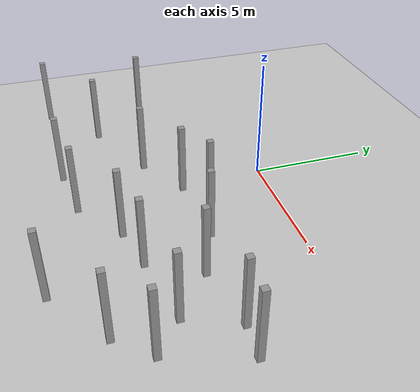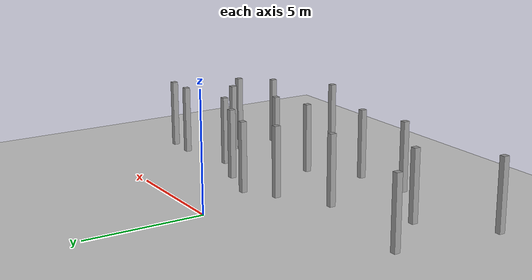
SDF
<sdf version="1.6">
 <world name="default">
  <model name="ground_plane">
   <static>1</static>
   <link name="link">
    <collision name="collision">
     <geometry><plane><normal>0 0 1</normal><size>100 100</size></plane></geometry>
     <surface><friction><ode><mu>100</mu><mu2>50</mu2></ode></friction></surface>
    </collision>
    <visual name="visual">
     <cast_shadows>0</cast_shadows>
     <geometry><plane><normal>0 0 1</normal><size>100 100</size></plane></geometry>
     <material>
      <script><uri>file://media/materials/scripts/gazebo.material</uri><name>Gazebo/Grey</name></script>
     </material>
    </visual>
   </link>
  </model>
  <model name="box_2_0">
   <link name="link">
    <pose>0 0 1 0 -0 0</pose>
    <inertial>
     <mass>1</mass>
     <inertia><ixx>5.16667</ixx><ixy>0</ixy><ixz>0</ixz><iyy>5.16667</iyy><iyz>0</iyz><izz>5.16667</izz></inertia>
     <pose>0 0 1 0 -0 0</pose>
    </inertial>
    <visual name="ModelPreview_4::link::visual_1">
     <geometry><box><size>0.25 0.25 3</size></box></geometry>
     <material>
      <script><name>Gazebo/Grey</name><uri>file://media/materials/scripts/gazebo.material</uri></script>
      <ambient>0.3 0.3 0.3 1</ambient>
      <diffuse>0.7 0.7 0.7 1</diffuse>
      <specular>0.01 0.01 0.01 1</specular>
      <emissive>0 0 0 1</emissive>
      <shader type="vertex"><normal_map>__default__</normal_map></shader>
     </material>
    </visual>
    <visual name="visual">
     <geometry><box><size>0.25 0.25 3</size></box></geometry>
     <material>
      <script><name>Gazebo/Grey</name><uri>file://media/materials/scripts/gazebo.material</uri></script>
      <ambient>0.3 0.3 0.3 1</ambient>
      <diffuse>0.7 0.7 0.7 1</diffuse>
      <specular>0.01 0.01 0.01 1</specular>
      <emissive>0 0 0 1</emissive>
      <shader type="vertex"><normal_map>__default__</normal_map></shader>
     </material>
    </visual>
    <collision name="collision">
     <geometry><box><size>0.25 0.25 3</size></box></geometry>
     <surface>
      <friction>
       <ode><mu>1</mu><mu2>1</mu2><fdir1>0 0 0</fdir1><slip1>0</slip1><slip2>0</slip2></ode>
       <torsional>
        <coefficient>1</coefficient>
        <patch_radius>0</patch_radius>
        <surface_radius>0</surface_radius>
        <use_patch_radius>1</use_patch_radius>
        <ode><slip>0</slip></ode>
       </torsional>
      </friction>
      <bounce><restitution_coefficient>0</restitution_coefficient><threshold>1e+06</threshold></bounce>
      <contact>
       <collide_without_contact>0</collide_without_contact>
       <collide_without_contact_bitmask>1</collide_without_contact_bitmask>
       <collide_bitmask>1</collide_bitmask>
       <ode>
        <soft_cfm>0</soft_cfm>
        <soft_erp>0.2</soft_erp>
        <kp>1e+13</kp>
        <kd>1</kd>
        <max_vel>0.01</max_vel>
        <min_depth>0</min_depth>
       </ode>
       <bullet>
        <split_impulse>1</split_impulse>
        <split_impulse_penetration_threshold>-0.01</split_impulse_penetration_threshold>
        <soft_cfm>0</soft_cfm>
        <soft_erp>0.2</soft_erp>
        <kp>1e+13</kp>
        <kd>1</kd>
       </bullet>
      </contact>
     </surface>
    </collision>
   </link>
   <static>0</static>
   <pose>-1.80227 -4.75192 0.5 -3e-06 -1e-06 -0.000128</pose>
  </model>
  <model name="box_2_1">
   <link name="link">
    <pose>0 0 1 0 -0 0</pose>
    <inertial>
     <mass>1</mass>
     <inertia><ixx>5.16667</ixx><ixy>0</ixy><ixz>0</ixz><iyy>5.16667</iyy><iyz>0</iyz><izz>5.16667</izz></inertia>
     <pose>0 0 1 0 -0 0</pose>
    </inertial>
    <visual name="ModelPreview_4::link::visual_1">
     <geometry><box><size>0.25 0.25 3</size></box></geometry>
     <material>
      <script><name>Gazebo/Grey</name><uri>file://media/materials/scripts/gazebo.material</uri></script>
      <ambient>0.3 0.3 0.3 1</ambient>
      <diffuse>0.7 0.7 0.7 1</diffuse>
      <specular>0.01 0.01 0.01 1</specular>
      <emissive>0 0 0 1</emissive>
      <shader type="vertex"><normal_map>__default__</normal_map></shader>
     </material>
    </visual>
    <visual name="visual">
     <geometry><box><size>0.25 0.25 3</size></box></geometry>
     <material>
      <script><name>Gazebo/Grey</name><uri>file://media/materials/scripts/gazebo.material</uri></script>
      <ambient>0.3 0.3 0.3 1</ambient>
      <diffuse>0.7 0.7 0.7 1</diffuse>
      <specular>0.01 0.01 0.01 1</specular>
      <emissive>0 0 0 1</emissive>
      <shader type="vertex"><normal_map>__default__</normal_map></shader>
     </material>
    </visual>
    <collision name="collision">
     <geometry><box><size>0.25 0.25 3</size></box></geometry>
     <surface>
      <friction>
       <ode><mu>1</mu><mu2>1</mu2><fdir1>0 0 0</fdir1><slip1>0</slip1><slip2>0</slip2></ode>
       <torsional>
        <coefficient>1</coefficient>
        <patch_radius>0</patch_radius>
        <surface_radius>0</surface_radius>
        <use_patch_radius>1</use_patch_radius>
        <ode><slip>0</slip></ode>
       </torsional>
      </friction>
      <bounce><restitution_coefficient>0</restitution_coefficient><threshold>1e+06</threshold></bounce>
      <contact>
       <collide_without_contact>0</collide_without_contact>
       <collide_without_contact_bitmask>1</collide_without_contact_bitmask>
       <collide_bitmask>1</collide_bitmask>
       <ode>
        <soft_cfm>0</soft_cfm>
        <soft_erp>0.2</soft_erp>
        <kp>1e+13</kp>
        <kd>1</kd>
        <max_vel>0.01</max_vel>
        <min_depth>0</min_depth>
       </ode>
       <bullet>
        <split_impulse>1</split_impulse>
        <split_impulse_penetration_threshold>-0.01</split_impulse_penetration_threshold>
        <soft_cfm>0</soft_cfm>
        <soft_erp>0.2</soft_erp>
        <kp>1e+13</kp>
        <kd>1</kd>
       </bullet>
      </contact>
     </surface>
    </collision>
   </link>
   <static>0</static>
   <pose>4.35883 -6.08967 0.500001 0 5e-06 -0.000185</pose>
  </model>
  <model name="box_2_2">
   <link name="link">
    <pose>0 0 1 0 -0 0</pose>
    <inertial>
     <mass>1</mass>
     <inertia><ixx>5.16667</ixx><ixy>0</ixy><ixz>0</ixz><iyy>5.16667</iyy><iyz>0</iyz><izz>5.16667</izz></inertia>
     <pose>0 0 1 0 -0 0</pose>
    </inertial>
    <visual name="ModelPreview_4::link::visual_1">
     <geometry><box><size>0.25 0.25 3</size></box></geometry>
     <material>
      <script><name>Gazebo/Grey</name><uri>file://media/materials/scripts/gazebo.material</uri></script>
      <ambient>0.3 0.3 0.3 1</ambient>
      <diffuse>0.7 0.7 0.7 1</diffuse>
      <specular>0.01 0.01 0.01 1</specular>
      <emissive>0 0 0 1</emissive>
      <shader type="vertex"><normal_map>__default__</normal_map></shader>
     </material>
    </visual>
    <visual name="visual">
     <geometry><box><size>0.25 0.25 3</size></box></geometry>
     <material>
      <script><name>Gazebo/Grey</name><uri>file://media/materials/scripts/gazebo.material</uri></script>
      <ambient>0.3 0.3 0.3 1</ambient>
      <diffuse>0.7 0.7 0.7 1</diffuse>
      <specular>0.01 0.01 0.01 1</specular>
      <emissive>0 0 0 1</emissive>
      <shader type="vertex"><normal_map>__default__</normal_map></shader>
     </material>
    </visual>
    <collision name="collision">
     <geometry><box><size>0.25 0.25 3</size></box></geometry>
     <surface>
      <friction>
       <ode><mu>1</mu><mu2>1</mu2><fdir1>0 0 0</fdir1><slip1>0</slip1><slip2>0</slip2></ode>
       <torsional>
        <coefficient>1</coefficient>
        <patch_radius>0</patch_radius>
        <surface_radius>0</surface_radius>
        <use_patch_radius>1</use_patch_radius>
        <ode><slip>0</slip></ode>
       </torsional>
      </friction>
      <bounce><restitution_coefficient>0</restitution_coefficient><threshold>1e+06</threshold></bounce>
      <contact>
       <collide_without_contact>0</collide_without_contact>
       <collide_without_contact_bitmask>1</collide_without_contact_bitmask>
       <collide_bitmask>1</collide_bitmask>
       <ode>
        <soft_cfm>0</soft_cfm>
        <soft_erp>0.2</soft_erp>
        <kp>1e+13</kp>
        <kd>1</kd>
        <max_vel>0.01</max_vel>
        <min_depth>0</min_depth>
       </ode>
       <bullet>
        <split_impulse>1</split_impulse>
        <split_impulse_penetration_threshold>-0.01</split_impulse_penetration_threshold>
        <soft_cfm>0</soft_cfm>
        <soft_erp>0.2</soft_erp>
        <kp>1e+13</kp>
        <kd>1</kd>
       </bullet>
      </contact>
     </surface>
    </collision>
   </link>
   <static>0</static>
   <pose>7.18492 -5.54152 0.5 0 1e-06 -0.000157</pose>
  </model>
  <model name="box_2_3">
   <link name="link">
    <pose>0 0 1 0 -0 0</pose>
    <inertial>
     <mass>1</mass>
     <inertia><ixx>5.16667</ixx><ixy>0</ixy><ixz>0</ixz><iyy>5.16667</iyy><iyz>0</iyz><izz>5.16667</izz></inertia>
     <pose>0 0 1 0 -0 0</pose>
    </inertial>
    <visual name="ModelPreview_4::link::visual_1">
     <geometry><box><size>0.25 0.25 3</size></box></geometry>
     <material>
      <script><name>Gazebo/Grey</name><uri>file://media/materials/scripts/gazebo.material</uri></script>
      <ambient>0.3 0.3 0.3 1</ambient>
      <diffuse>0.7 0.7 0.7 1</diffuse>
      <specular>0.01 0.01 0.01 1</specular>
      <emissive>0 0 0 1</emissive>
      <shader type="vertex"><normal_map>__default__</normal_map></shader>
     </material>
    </visual>
    <visual name="visual">
     <geometry><box><size>0.25 0.25 3</size></box></geometry>
     <material>
      <script><name>Gazebo/Grey</name><uri>file://media/materials/scripts/gazebo.material</uri></script>
      <ambient>0.3 0.3 0.3 1</ambient>
      <diffuse>0.7 0.7 0.7 1</diffuse>
      <specular>0.01 0.01 0.01 1</specular>
      <emissive>0 0 0 1</emissive>
      <shader type="vertex"><normal_map>__default__</normal_map></shader>
     </material>
    </visual>
    <collision name="collision">
     <geometry><box><size>0.25 0.25 3</size></box></geometry>
     <surface>
      <friction>
       <ode><mu>1</mu><mu2>1</mu2><fdir1>0 0 0</fdir1><slip1>0</slip1><slip2>0</slip2></ode>
       <torsional>
        <coefficient>1</coefficient>
        <patch_radius>0</patch_radius>
        <surface_radius>0</surface_radius>
        <use_patch_radius>1</use_patch_radius>
        <ode><slip>0</slip></ode>
       </torsional>
      </friction>
      <bounce><restitution_coefficient>0</restitution_coefficient><threshold>1e+06</threshold></bounce>
      <contact>
       <collide_without_contact>0</collide_without_contact>
       <collide_without_contact_bitmask>1</collide_without_contact_bitmask>
       <collide_bitmask>1</collide_bitmask>
       <ode>
        <soft_cfm>0</soft_cfm>
        <soft_erp>0.2</soft_erp>
        <kp>1e+13</kp>
        <kd>1</kd>
        <max_vel>0.01</max_vel>
        <min_depth>0</min_depth>
       </ode>
       <bullet>
        <split_impulse>1</split_impulse>
        <split_impulse_penetration_threshold>-0.01</split_impulse_penetration_threshold>
        <soft_cfm>0</soft_cfm>
        <soft_erp>0.2</soft_erp>
        <kp>1e+13</kp>
        <kd>1</kd>
       </bullet>
      </contact>
     </surface>
    </collision>
   </link>
   <static>0</static>
   <pose>0.476728 -7.9552 0.500001 3e-06 -4e-06 -0.000167</pose>
  </model>
  <model name="box_2_4">
   <link name="link">
    <pose>0 0 1 0 -0 0</pose>
    <inertial>
     <mass>1</mass>
     <inertia><ixx>5.16667</ixx><ixy>0</ixy><ixz>0</ixz><iyy>5.16667</iyy><iyz>0</iyz><izz>5.16667</izz></inertia>
     <pose>0 0 1 0 -0 0</pose>
    </inertial>
    <visual name="ModelPreview_4::link::visual_1">
     <geometry><box><size>0.25 0.25 3</size></box></geometry>
     <material>
      <script><name>Gazebo/Grey</name><uri>file://media/materials/scripts/gazebo.material</uri></script>
      <ambient>0.3 0.3 0.3 1</ambient>
      <diffuse>0.7 0.7 0.7 1</diffuse>
      <specular>0.01 0.01 0.01 1</specular>
      <emissive>0 0 0 1</emissive>
      <shader type="vertex"><normal_map>__default__</normal_map></shader>
     </material>
    </visual>
    <visual name="visual">
     <geometry><box><size>0.25 0.25 3</size></box></geometry>
     <material>
      <script><name>Gazebo/Grey</name><uri>file://media/materials/scripts/gazebo.material</uri></script>
      <ambient>0.3 0.3 0.3 1</ambient>
      <diffuse>0.7 0.7 0.7 1</diffuse>
      <specular>0.01 0.01 0.01 1</specular>
      <emissive>0 0 0 1</emissive>
      <shader type="vertex"><normal_map>__default__</normal_map></shader>
     </material>
    </visual>
    <collision name="collision">
     <geometry><box><size>0.25 0.25 3</size></box></geometry>
     <surface>
      <friction>
       <ode><mu>1</mu><mu2>1</mu2><fdir1>0 0 0</fdir1><slip1>0</slip1><slip2>0</slip2></ode>
       <torsional>
        <coefficient>1</coefficient>
        <patch_radius>0</patch_radius>
        <surface_radius>0</surface_radius>
        <use_patch_radius>1</use_patch_radius>
        <ode><slip>0</slip></ode>
       </torsional>
      </friction>
      <bounce><restitution_coefficient>0</restitution_coefficient><threshold>1e+06</threshold></bounce>
      <contact>
       <collide_without_contact>0</collide_without_contact>
       <collide_without_contact_bitmask>1</collide_without_contact_bitmask>
       <collide_bitmask>1</collide_bitmask>
       <ode>
        <soft_cfm>0</soft_cfm>
        <soft_erp>0.2</soft_erp>
        <kp>1e+13</kp>
        <kd>1</kd>
        <max_vel>0.01</max_vel>
        <min_depth>0</min_depth>
       </ode>
       <bullet>
        <split_impulse>1</split_impulse>
        <split_impulse_penetration_threshold>-0.01</split_impulse_penetration_threshold>
        <soft_cfm>0</soft_cfm>
        <soft_erp>0.2</soft_erp>
        <kp>1e+13</kp>
        <kd>1</kd>
       </bullet>
      </contact>
     </surface>
    </collision>
   </link>
   <static>0</static>
   <pose>7.33014 -7.82542 0.5 3e-06 -0 -0.000129</pose>
  </model>
  <model name="box_2_6">
   <link name="link">
    <pose>0 0 1 0 -0 0</pose>
    <inertial>
     <mass>1</mass>
     <inertia><ixx>5.16667</ixx><ixy>0</ixy><ixz>0</ixz><iyy>5.16667</iyy><iyz>0</iyz><izz>5.16667</izz></inertia>
     <pose>0 0 1 0 -0 0</pose>
    </inertial>
    <visual name="ModelPreview_4::link::visual_1">
     <geometry><box><size>0.25 0.25 3</size></box></geometry>
     <material>
      <script><name>Gazebo/Grey</name><uri>file://media/materials/scripts/gazebo.material</uri></script>
      <ambient>0.3 0.3 0.3 1</ambient>
      <diffuse>0.7 0.7 0.7 1</diffuse>
      <specular>0.01 0.01 0.01 1</specular>
      <emissive>0 0 0 1</emissive>
      <shader type="vertex"><normal_map>__default__</normal_map></shader>
     </material>
    </visual>
    <visual name="visual">
     <geometry><box><size>0.25 0.25 3</size></box></geometry>
     <material>
      <script><name>Gazebo/Grey</name><uri>file://media/materials/scripts/gazebo.material</uri></script>
      <ambient>0.3 0.3 0.3 1</ambient>
      <diffuse>0.7 0.7 0.7 1</diffuse>
      <specular>0.01 0.01 0.01 1</specular>
      <emissive>0 0 0 1</emissive>
      <shader type="vertex"><normal_map>__default__</normal_map></shader>
     </material>
    </visual>
    <collision name="collision">
     <geometry><box><size>0.25 0.25 3</size></box></geometry>
     <surface>
      <friction>
       <ode><mu>1</mu><mu2>1</mu2><fdir1>0 0 0</fdir1><slip1>0</slip1><slip2>0</slip2></ode>
       <torsional>
        <coefficient>1</coefficient>
        <patch_radius>0</patch_radius>
        <surface_radius>0</surface_radius>
        <use_patch_radius>1</use_patch_radius>
        <ode><slip>0</slip></ode>
       </torsional>
      </friction>
      <bounce><restitution_coefficient>0</restitution_coefficient><threshold>1e+06</threshold></bounce>
      <contact>
       <collide_without_contact>0</collide_without_contact>
       <collide_without_contact_bitmask>1</collide_without_contact_bitmask>
       <collide_bitmask>1</collide_bitmask>
       <ode>
        <soft_cfm>0</soft_cfm>
        <soft_erp>0.2</soft_erp>
        <kp>1e+13</kp>
        <kd>1</kd>
        <max_vel>0.01</max_vel>
        <min_depth>0</min_depth>
       </ode>
       <bullet>
        <split_impulse>1</split_impulse>
        <split_impulse_penetration_threshold>-0.01</split_impulse_penetration_threshold>
        <soft_cfm>0</soft_cfm>
        <soft_erp>0.2</soft_erp>
        <kp>1e+13</kp>
        <kd>1</kd>
       </bullet>
      </contact>
     </surface>
    </collision>
   </link>
   <static>0</static>
   <pose>3.49181 -3.31679 0.5 1e-06 -3e-06 -9.3e-05</pose>
  </model>
  <model name="box_2_8">
   <link name="link">
    <pose>0 0 1 0 -0 0</pose>
    <inertial>
     <mass>1</mass>
     <inertia><ixx>5.16667</ixx><ixy>0</ixy><ixz>0</ixz><iyy>5.16667</iyy><iyz>0</iyz><izz>5.16667</izz></inertia>
     <pose>0 0 1 0 -0 0</pose>
    </inertial>
    <visual name="ModelPreview_4::link::visual_1">
     <geometry><box><size>0.25 0.25 3</size></box></geometry>
     <material>
      <script><name>Gazebo/Grey</name><uri>file://media/materials/scripts/gazebo.material</uri></script>
      <ambient>0.3 0.3 0.3 1</ambient>
      <diffuse>0.7 0.7 0.7 1</diffuse>
      <specular>0.01 0.01 0.01 1</specular>
      <emissive>0 0 0 1</emissive>
      <shader type="vertex"><normal_map>__default__</normal_map></shader>
     </material>
    </visual>
    <visual name="visual">
     <geometry><box><size>0.25 0.25 3</size></box></geometry>
     <material>
      <script><name>Gazebo/Grey</name><uri>file://media/materials/scripts/gazebo.material</uri></script>
      <ambient>0.3 0.3 0.3 1</ambient>
      <diffuse>0.7 0.7 0.7 1</diffuse>
      <specular>0.01 0.01 0.01 1</specular>
      <emissive>0 0 0 1</emissive>
      <shader type="vertex"><normal_map>__default__</normal_map></shader>
     </material>
    </visual>
    <collision name="collision">
     <geometry><box><size>0.25 0.25 3</size></box></geometry>
     <surface>
      <friction>
       <ode><mu>1</mu><mu2>1</mu2><fdir1>0 0 0</fdir1><slip1>0</slip1><slip2>0</slip2></ode>
       <torsional>
        <coefficient>1</coefficient>
        <patch_radius>0</patch_radius>
        <surface_radius>0</surface_radius>
        <use_patch_radius>1</use_patch_radius>
        <ode><slip>0</slip></ode>
       </torsional>
      </friction>
      <bounce><restitution_coefficient>0</restitution_coefficient><threshold>1e+06</threshold></bounce>
      <contact>
       <collide_without_contact>0</collide_without_contact>
       <collide_without_contact_bitmask>1</collide_without_contact_bitmask>
       <collide_bitmask>1</collide_bitmask>
       <ode>
        <soft_cfm>0</soft_cfm>
        <soft_erp>0.2</soft_erp>
        <kp>1e+13</kp>
        <kd>1</kd>
        <max_vel>0.01</max_vel>
        <min_depth>0</min_depth>
       </ode>
       <bullet>
        <split_impulse>1</split_impulse>
        <split_impulse_penetration_threshold>-0.01</split_impulse_penetration_threshold>
        <soft_cfm>0</soft_cfm>
        <soft_erp>0.2</soft_erp>
        <kp>1e+13</kp>
        <kd>1</kd>
       </bullet>
      </contact>
     </surface>
    </collision>
   </link>
   <static>0</static>
   <pose>2.49951 -6.51199 0.5 0 0 -0.000133</pose>
  </model>
  <model name="box_2_9">
   <link name="link">
    <pose>0 0 1 0 -0 0</pose>
    <inertial>
     <mass>1</mass>
     <inertia><ixx>5.16667</ixx><ixy>0</ixy><ixz>0</ixz><iyy>5.16667</iyy><iyz>0</iyz><izz>5.16667</izz></inertia>
     <pose>0 0 1 0 -0 0</pose>
    </inertial>
    <visual name="ModelPreview_4::link::visual_1">
     <geometry><box><size>0.25 0.25 3</size></box></geometry>
     <material>
      <script><name>Gazebo/Grey</name><uri>file://media/materials/scripts/gazebo.material</uri></script>
      <ambient>0.3 0.3 0.3 1</ambient>
      <diffuse>0.7 0.7 0.7 1</diffuse>
      <specular>0.01 0.01 0.01 1</specular>
      <emissive>0 0 0 1</emissive>
      <shader type="vertex"><normal_map>__default__</normal_map></shader>
     </material>
    </visual>
    <visual name="visual">
     <geometry><box><size>0.25 0.25 3</size></box></geometry>
     <material>
      <script><name>Gazebo/Grey</name><uri>file://media/materials/scripts/gazebo.material</uri></script>
      <ambient>0.3 0.3 0.3 1</ambient>
      <diffuse>0.7 0.7 0.7 1</diffuse>
      <specular>0.01 0.01 0.01 1</specular>
      <emissive>0 0 0 1</emissive>
      <shader type="vertex"><normal_map>__default__</normal_map></shader>
     </material>
    </visual>
    <collision name="collision">
     <geometry><box><size>0.25 0.25 3</size></box></geometry>
     <surface>
      <friction>
       <ode><mu>1</mu><mu2>1</mu2><fdir1>0 0 0</fdir1><slip1>0</slip1><slip2>0</slip2></ode>
       <torsional>
        <coefficient>1</coefficient>
        <patch_radius>0</patch_radius>
        <surface_radius>0</surface_radius>
        <use_patch_radius>1</use_patch_radius>
        <ode><slip>0</slip></ode>
       </torsional>
      </friction>
      <bounce><restitution_coefficient>0</restitution_coefficient><threshold>1e+06</threshold></bounce>
      <contact>
       <collide_without_contact>0</collide_without_contact>
       <collide_without_contact_bitmask>1</collide_without_contact_bitmask>
       <collide_bitmask>1</collide_bitmask>
       <ode>
        <soft_cfm>0</soft_cfm>
        <soft_erp>0.2</soft_erp>
        <kp>1e+13</kp>
        <kd>1</kd>
        <max_vel>0.01</max_vel>
        <min_depth>0</min_depth>
       </ode>
       <bullet>
        <split_impulse>1</split_impulse>
        <split_impulse_penetration_threshold>-0.01</split_impulse_penetration_threshold>
        <soft_cfm>0</soft_cfm>
        <soft_erp>0.2</soft_erp>
        <kp>1e+13</kp>
        <kd>1</kd>
       </bullet>
      </contact>
     </surface>
    </collision>
   </link>
   <static>0</static>
   <pose>-1.93996 -8.27565 0.5 -0 1e-06 -0.000136</pose>
  </model>
  <model name="box_2_10">
   <link name="link">
    <pose>0 0 1 0 -0 0</pose>
    <inertial>
     <mass>1</mass>
     <inertia><ixx>5.16667</ixx><ixy>0</ixy><ixz>0</ixz><iyy>5.16667</iyy><iyz>0</iyz><izz>5.16667</izz></inertia>
     <pose>0 0 1 0 -0 0</pose>
    </inertial>
    <visual name="ModelPreview_4::link::visual_1">
     <geometry><box><size>0.25 0.25 3</size></box></geometry>
     <material>
      <script><name>Gazebo/Grey</name><uri>file://media/materials/scripts/gazebo.material</uri></script>
      <ambient>0.3 0.3 0.3 1</ambient>
      <diffuse>0.7 0.7 0.7 1</diffuse>
      <specular>0.01 0.01 0.01 1</specular>
      <emissive>0 0 0 1</emissive>
      <shader type="vertex"><normal_map>__default__</normal_map></shader>
     </material>
    </visual>
    <visual name="visual">
     <geometry><box><size>0.25 0.25 3</size></box></geometry>
     <material>
      <script><name>Gazebo/Grey</name><uri>file://media/materials/scripts/gazebo.material</uri></script>
      <ambient>0.3 0.3 0.3 1</ambient>
      <diffuse>0.7 0.7 0.7 1</diffuse>
      <specular>0.01 0.01 0.01 1</specular>
      <emissive>0 0 0 1</emissive>
      <shader type="vertex"><normal_map>__default__</normal_map></shader>
     </material>
    </visual>
    <collision name="collision">
     <geometry><box><size>0.25 0.25 3</size></box></geometry>
     <surface>
      <friction>
       <ode><mu>1</mu><mu2>1</mu2><fdir1>0 0 0</fdir1><slip1>0</slip1><slip2>0</slip2></ode>
       <torsional>
        <coefficient>1</coefficient>
        <patch_radius>0</patch_radius>
        <surface_radius>0</surface_radius>
        <use_patch_radius>1</use_patch_radius>
        <ode><slip>0</slip></ode>
       </torsional>
      </friction>
      <bounce><restitution_coefficient>0</restitution_coefficient><threshold>1e+06</threshold></bounce>
      <contact>
       <collide_without_contact>0</collide_without_contact>
       <collide_without_contact_bitmask>1</collide_without_contact_bitmask>
       <collide_bitmask>1</collide_bitmask>
       <ode>
        <soft_cfm>0</soft_cfm>
        <soft_erp>0.2</soft_erp>
        <kp>1e+13</kp>
        <kd>1</kd>
        <max_vel>0.01</max_vel>
        <min_depth>0</min_depth>
       </ode>
       <bullet>
        <split_impulse>1</split_impulse>
        <split_impulse_penetration_threshold>-0.01</split_impulse_penetration_threshold>
        <soft_cfm>0</soft_cfm>
        <soft_erp>0.2</soft_erp>
        <kp>1e+13</kp>
        <kd>1</kd>
       </bullet>
      </contact>
     </surface>
    </collision>
   </link>
   <static>0</static>
   <pose>4.96375 -9.57303 0.500001 5e-06 -0 -0.000122</pose>
  </model>
  <model name="box_2_11">
   <link name="link">
    <pose>0 0 1 0 -0 0</pose>
    <inertial>
     <mass>1</mass>
     <inertia><ixx>5.16667</ixx><ixy>0</ixy><ixz>0</ixz><iyy>5.16667</iyy><iyz>0</iyz><izz>5.16667</izz></inertia>
     <pose>0 0 1 0 -0 0</pose>
    </inertial>
    <visual name="ModelPreview_4::link::visual_1">
     <geometry><box><size>0.25 0.25 3</size></box></geometry>
     <material>
      <script><name>Gazebo/Grey</name><uri>file://media/materials/scripts/gazebo.material</uri></script>
      <ambient>0.3 0.3 0.3 1</ambient>
      <diffuse>0.7 0.7 0.7 1</diffuse>
      <specular>0.01 0.01 0.01 1</specular>
      <emissive>0 0 0 1</emissive>
      <shader type="vertex"><normal_map>__default__</normal_map></shader>
     </material>
    </visual>
    <visual name="visual">
     <geometry><box><size>0.25 0.25 3</size></box></geometry>
     <material>
      <script><name>Gazebo/Grey</name><uri>file://media/materials/scripts/gazebo.material</uri></script>
      <ambient>0.3 0.3 0.3 1</ambient>
      <diffuse>0.7 0.7 0.7 1</diffuse>
      <specular>0.01 0.01 0.01 1</specular>
      <emissive>0 0 0 1</emissive>
      <shader type="vertex"><normal_map>__default__</normal_map></shader>
     </material>
    </visual>
    <collision name="collision">
     <geometry><box><size>0.25 0.25 3</size></box></geometry>
     <surface>
      <friction>
       <ode><mu>1</mu><mu2>1</mu2><fdir1>0 0 0</fdir1><slip1>0</slip1><slip2>0</slip2></ode>
       <torsional>
        <coefficient>1</coefficient>
        <patch_radius>0</patch_radius>
        <surface_radius>0</surface_radius>
        <use_patch_radius>1</use_patch_radius>
        <ode><slip>0</slip></ode>
       </torsional>
      </friction>
      <bounce><restitution_coefficient>0</restitution_coefficient><threshold>1e+06</threshold></bounce>
      <contact>
       <collide_without_contact>0</collide_without_contact>
       <collide_without_contact_bitmask>1</collide_without_contact_bitmask>
       <collide_bitmask>1</collide_bitmask>
       <ode>
        <soft_cfm>0</soft_cfm>
        <soft_erp>0.2</soft_erp>
        <kp>1e+13</kp>
        <kd>1</kd>
        <max_vel>0.01</max_vel>
        <min_depth>0</min_depth>
       </ode>
       <bullet>
        <split_impulse>1</split_impulse>
        <split_impulse_penetration_threshold>-0.01</split_impulse_penetration_threshold>
        <soft_cfm>0</soft_cfm>
        <soft_erp>0.2</soft_erp>
        <kp>1e+13</kp>
        <kd>1</kd>
       </bullet>
      </contact>
     </surface>
    </collision>
   </link>
   <static>0</static>
   <pose>-6.97607 -3.85239 0.500001 6e-06 0 -0.000115</pose>
  </model>
  <model name="box_2_13">
   <link name="link">
    <pose>0 0 1 0 -0 0</pose>
    <inertial>
     <mass>1</mass>
     <inertia><ixx>5.16667</ixx><ixy>0</ixy><ixz>0</ixz><iyy>5.16667</iyy><iyz>0</iyz><izz>5.16667</izz></inertia>
     <pose>0 0 1 0 -0 0</pose>
    </inertial>
    <visual name="ModelPreview_4::link::visual_1">
     <geometry><box><size>0.25 0.25 3</size></box></geometry>
     <material>
      <script><name>Gazebo/Grey</name><uri>file://media/materials/scripts/gazebo.material</uri></script>
      <ambient>0.3 0.3 0.3 1</ambient>
      <diffuse>0.7 0.7 0.7 1</diffuse>
      <specular>0.01 0.01 0.01 1</specular>
      <emissive>0 0 0 1</emissive>
      <shader type="vertex"><normal_map>__default__</normal_map></shader>
     </material>
    </visual>
    <visual name="visual">
     <geometry><box><size>0.25 0.25 3</size></box></geometry>
     <material>
      <script><name>Gazebo/Grey</name><uri>file://media/materials/scripts/gazebo.material</uri></script>
      <ambient>0.3 0.3 0.3 1</ambient>
      <diffuse>0.7 0.7 0.7 1</diffuse>
      <specular>0.01 0.01 0.01 1</specular>
      <emissive>0 0 0 1</emissive>
      <shader type="vertex"><normal_map>__default__</normal_map></shader>
     </material>
    </visual>
    <collision name="collision">
     <geometry><box><size>0.25 0.25 3</size></box></geometry>
     <surface>
      <friction>
       <ode><mu>1</mu><mu2>1</mu2><fdir1>0 0 0</fdir1><slip1>0</slip1><slip2>0</slip2></ode>
       <torsional>
        <coefficient>1</coefficient>
        <patch_radius>0</patch_radius>
        <surface_radius>0</surface_radius>
        <use_patch_radius>1</use_patch_radius>
        <ode><slip>0</slip></ode>
       </torsional>
      </friction>
      <bounce><restitution_coefficient>0</restitution_coefficient><threshold>1e+06</threshold></bounce>
      <contact>
       <collide_without_contact>0</collide_without_contact>
       <collide_without_contact_bitmask>1</collide_without_contact_bitmask>
       <collide_bitmask>1</collide_bitmask>
       <ode>
        <soft_cfm>0</soft_cfm>
        <soft_erp>0.2</soft_erp>
        <kp>1e+13</kp>
        <kd>1</kd>
        <max_vel>0.01</max_vel>
        <min_depth>0</min_depth>
       </ode>
       <bullet>
        <split_impulse>1</split_impulse>
        <split_impulse_penetration_threshold>-0.01</split_impulse_penetration_threshold>
        <soft_cfm>0</soft_cfm>
        <soft_erp>0.2</soft_erp>
        <kp>1e+13</kp>
        <kd>1</kd>
       </bullet>
      </contact>
     </surface>
    </collision>
   </link>
   <static>0</static>
   <pose>8.04407 -3.57108 0.5 0 -1e-06 -0.000173</pose>
  </model>
  <model name="box_2_16">
   <link name="link">
    <pose>0 0 1 0 -0 0</pose>
    <inertial>
     <mass>1</mass>
     <inertia><ixx>5.16667</ixx><ixy>0</ixy><ixz>0</ixz><iyy>5.16667</iyy><iyz>0</iyz><izz>5.16667</izz></inertia>
     <pose>0 0 1 0 -0 0</pose>
    </inertial>
    <visual name="ModelPreview_4::link::visual_1">
     <geometry><box><size>0.25 0.25 3</size></box></geometry>
     <material>
      <script><name>Gazebo/Grey</name><uri>file://media/materials/scripts/gazebo.material</uri></script>
      <ambient>0.3 0.3 0.3 1</ambient>
      <diffuse>0.7 0.7 0.7 1</diffuse>
      <specular>0.01 0.01 0.01 1</specular>
      <emissive>0 0 0 1</emissive>
      <shader type="vertex"><normal_map>__default__</normal_map></shader>
     </material>
    </visual>
    <visual name="visual">
     <geometry><box><size>0.25 0.25 3</size></box></geometry>
     <material>
      <script><name>Gazebo/Grey</name><uri>file://media/materials/scripts/gazebo.material</uri></script>
      <ambient>0.3 0.3 0.3 1</ambient>
      <diffuse>0.7 0.7 0.7 1</diffuse>
      <specular>0.01 0.01 0.01 1</specular>
      <emissive>0 0 0 1</emissive>
      <shader type="vertex"><normal_map>__default__</normal_map></shader>
     </material>
    </visual>
    <collision name="collision">
     <geometry><box><size>0.25 0.25 3</size></box></geometry>
     <surface>
      <friction>
       <ode><mu>1</mu><mu2>1</mu2><fdir1>0 0 0</fdir1><slip1>0</slip1><slip2>0</slip2></ode>
       <torsional>
        <coefficient>1</coefficient>
        <patch_radius>0</patch_radius>
        <surface_radius>0</surface_radius>
        <use_patch_radius>1</use_patch_radius>
        <ode><slip>0</slip></ode>
       </torsional>
      </friction>
      <bounce><restitution_coefficient>0</restitution_coefficient><threshold>1e+06</threshold></bounce>
      <contact>
       <collide_without_contact>0</collide_without_contact>
       <collide_without_contact_bitmask>1</collide_without_contact_bitmask>
       <collide_bitmask>1</collide_bitmask>
       <ode>
        <soft_cfm>0</soft_cfm>
        <soft_erp>0.2</soft_erp>
        <kp>1e+13</kp>
        <kd>1</kd>
        <max_vel>0.01</max_vel>
        <min_depth>0</min_depth>
       </ode>
       <bullet>
        <split_impulse>1</split_impulse>
        <split_impulse_penetration_threshold>-0.01</split_impulse_penetration_threshold>
        <soft_cfm>0</soft_cfm>
        <soft_erp>0.2</soft_erp>
        <kp>1e+13</kp>
        <kd>1</kd>
       </bullet>
      </contact>
     </surface>
    </collision>
   </link>
   <static>0</static>
   <pose>8.40152 -6.58043 0.5 2e-06 -1e-06 -0.000169</pose>
  </model>
  <model name="box_2_17">
   <link name="link">
    <pose>0 0 1 0 -0 0</pose>
    <inertial>
     <mass>1</mass>
     <inertia><ixx>5.16667</ixx><ixy>0</ixy><ixz>0</ixz><iyy>5.16667</iyy><iyz>0</iyz><izz>5.16667</izz></inertia>
     <pose>0 0 1 0 -0 0</pose>
    </inertial>
    <visual name="ModelPreview_4::link::visual_1">
     <geometry><box><size>0.25 0.25 3</size></box></geometry>
     <material>
      <script><name>Gazebo/Grey</name><uri>file://media/materials/scripts/gazebo.material</uri></script>
      <ambient>0.3 0.3 0.3 1</ambient>
      <diffuse>0.7 0.7 0.7 1</diffuse>
      <specular>0.01 0.01 0.01 1</specular>
      <emissive>0 0 0 1</emissive>
      <shader type="vertex"><normal_map>__default__</normal_map></shader>
     </material>
    </visual>
    <visual name="visual">
     <geometry><box><size>0.25 0.25 3</size></box></geometry>
     <material>
      <script><name>Gazebo/Grey</name><uri>file://media/materials/scripts/gazebo.material</uri></script>
      <ambient>0.3 0.3 0.3 1</ambient>
      <diffuse>0.7 0.7 0.7 1</diffuse>
      <specular>0.01 0.01 0.01 1</specular>
      <emissive>0 0 0 1</emissive>
      <shader type="vertex"><normal_map>__default__</normal_map></shader>
     </material>
    </visual>
    <collision name="collision">
     <geometry><box><size>0.25 0.25 3</size></box></geometry>
     <surface>
      <friction>
       <ode><mu>1</mu><mu2>1</mu2><fdir1>0 0 0</fdir1><slip1>0</slip1><slip2>0</slip2></ode>
       <torsional>
        <coefficient>1</coefficient>
        <patch_radius>0</patch_radius>
        <surface_radius>0</surface_radius>
        <use_patch_radius>1</use_patch_radius>
        <ode><slip>0</slip></ode>
       </torsional>
      </friction>
      <bounce><restitution_coefficient>0</restitution_coefficient><threshold>1e+06</threshold></bounce>
      <contact>
       <collide_without_contact>0</collide_without_contact>
       <collide_without_contact_bitmask>1</collide_without_contact_bitmask>
       <collide_bitmask>1</collide_bitmask>
       <ode>
        <soft_cfm>0</soft_cfm>
        <soft_erp>0.2</soft_erp>
        <kp>1e+13</kp>
        <kd>1</kd>
        <max_vel>0.01</max_vel>
        <min_depth>0</min_depth>
       </ode>
       <bullet>
        <split_impulse>1</split_impulse>
        <split_impulse_penetration_threshold>-0.01</split_impulse_penetration_threshold>
        <soft_cfm>0</soft_cfm>
        <soft_erp>0.2</soft_erp>
        <kp>1e+13</kp>
        <kd>1</kd>
       </bullet>
      </contact>
     </surface>
    </collision>
   </link>
   <static>0</static>
   <pose>9.36831 -3.63842 0.5 0 0 -0.000167</pose>
  </model>
  <model name="box_2_22">
   <link name="link">
    <pose>0 0 1 0 -0 0</pose>
    <inertial>
     <mass>1</mass>
     <inertia><ixx>5.16667</ixx><ixy>0</ixy><ixz>0</ixz><iyy>5.16667</iyy><iyz>0</iyz><izz>5.16667</izz></inertia>
     <pose>0 0 1 0 -0 0</pose>
    </inertial>
    <visual name="ModelPreview_4::link::visual_1">
     <geometry><box><size>0.25 0.25 3</size></box></geometry>
     <material>
      <script><name>Gazebo/Grey</name><uri>file://media/materials/scripts/gazebo.material</uri></script>
      <ambient>0.3 0.3 0.3 1</ambient>
      <diffuse>0.7 0.7 0.7 1</diffuse>
      <specular>0.01 0.01 0.01 1</specular>
      <emissive>0 0 0 1</emissive>
      <shader type="vertex"><normal_map>__default__</normal_map></shader>
     </material>
    </visual>
    <visual name="visual">
     <geometry><box><size>0.25 0.25 3</size></box></geometry>
     <material>
      <script><name>Gazebo/Grey</name><uri>file://media/materials/scripts/gazebo.material</uri></script>
      <ambient>0.3 0.3 0.3 1</ambient>
      <diffuse>0.7 0.7 0.7 1</diffuse>
      <specular>0.01 0.01 0.01 1</specular>
      <emissive>0 0 0 1</emissive>
      <shader type="vertex"><normal_map>__default__</normal_map></shader>
     </material>
    </visual>
    <collision name="collision">
     <geometry><box><size>0.25 0.25 3</size></box></geometry>
     <surface>
      <friction>
       <ode><mu>1</mu><mu2>1</mu2><fdir1>0 0 0</fdir1><slip1>0</slip1><slip2>0</slip2></ode>
       <torsional>
        <coefficient>1</coefficient>
        <patch_radius>0</patch_radius>
        <surface_radius>0</surface_radius>
        <use_patch_radius>1</use_patch_radius>
        <ode><slip>0</slip></ode>
       </torsional>
      </friction>
      <bounce><restitution_coefficient>0</restitution_coefficient><threshold>1e+06</threshold></bounce>
      <contact>
       <collide_without_contact>0</collide_without_contact>
       <collide_without_contact_bitmask>1</collide_without_contact_bitmask>
       <collide_bitmask>1</collide_bitmask>
       <ode>
        <soft_cfm>0</soft_cfm>
        <soft_erp>0.2</soft_erp>
        <kp>1e+13</kp>
        <kd>1</kd>
        <max_vel>0.01</max_vel>
        <min_depth>0</min_depth>
       </ode>
       <bullet>
        <split_impulse>1</split_impulse>
        <split_impulse_penetration_threshold>-0.01</split_impulse_penetration_threshold>
        <soft_cfm>0</soft_cfm>
        <soft_erp>0.2</soft_erp>
        <kp>1e+13</kp>
        <kd>1</kd>
       </bullet>
      </contact>
     </surface>
    </collision>
   </link>
   <static>0</static>
   <pose>0.305499 -3.52865 0.5 -0 -1e-06 -0.000132</pose>
  </model>
  <model name="box_2_25">
   <link name="link">
    <pose>0 0 1 0 -0 0</pose>
    <inertial>
     <mass>1</mass>
     <inertia><ixx>5.16667</ixx><ixy>0</ixy><ixz>0</ixz><iyy>5.16667</iyy><iyz>0</iyz><izz>5.16667</izz></inertia>
     <pose>0 0 1 0 -0 0</pose>
    </inertial>
    <visual name="ModelPreview_4::link::visual_1">
     <geometry><box><size>0.25 0.25 3</size></box></geometry>
     <material>
      <script><name>Gazebo/Grey</name><uri>file://media/materials/scripts/gazebo.material</uri></script>
      <ambient>0.3 0.3 0.3 1</ambient>
      <diffuse>0.7 0.7 0.7 1</diffuse>
      <specular>0.01 0.01 0.01 1</specular>
      <emissive>0 0 0 1</emissive>
      <shader type="vertex"><normal_map>__default__</normal_map></shader>
     </material>
    </visual>
    <visual name="visual">
     <geometry><box><size>0.25 0.25 3</size></box></geometry>
     <material>
      <script><name>Gazebo/Grey</name><uri>file://media/materials/scripts/gazebo.material</uri></script>
      <ambient>0.3 0.3 0.3 1</ambient>
      <diffuse>0.7 0.7 0.7 1</diffuse>
      <specular>0.01 0.01 0.01 1</specular>
      <emissive>0 0 0 1</emissive>
      <shader type="vertex"><normal_map>__default__</normal_map></shader>
     </material>
    </visual>
    <collision name="collision">
     <geometry><box><size>0.25 0.25 3</size></box></geometry>
     <surface>
      <friction>
       <ode><mu>1</mu><mu2>1</mu2><fdir1>0 0 0</fdir1><slip1>0</slip1><slip2>0</slip2></ode>
       <torsional>
        <coefficient>1</coefficient>
        <patch_radius>0</patch_radius>
        <surface_radius>0</surface_radius>
        <use_patch_radius>1</use_patch_radius>
        <ode><slip>0</slip></ode>
       </torsional>
      </friction>
      <bounce><restitution_coefficient>0</restitution_coefficient><threshold>1e+06</threshold></bounce>
      <contact>
       <collide_without_contact>0</collide_without_contact>
       <collide_without_contact_bitmask>1</collide_without_contact_bitmask>
       <collide_bitmask>1</collide_bitmask>
       <ode>
        <soft_cfm>0</soft_cfm>
        <soft_erp>0.2</soft_erp>
        <kp>1e+13</kp>
        <kd>1</kd>
        <max_vel>0.01</max_vel>
        <min_depth>0</min_depth>
       </ode>
       <bullet>
        <split_impulse>1</split_impulse>
        <split_impulse_penetration_threshold>-0.01</split_impulse_penetration_threshold>
        <soft_cfm>0</soft_cfm>
        <soft_erp>0.2</soft_erp>
        <kp>1e+13</kp>
        <kd>1</kd>
       </bullet>
      </contact>
     </surface>
    </collision>
   </link>
   <static>0</static>
   <pose>-5.03189 -6.26033 0.5 2e-06 -0 -0.000128</pose>
  </model>
  <model name="box_2_26">
   <link name="link">
    <pose>0 0 1 0 -0 0</pose>
    <inertial>
     <mass>1</mass>
     <inertia><ixx>5.16667</ixx><ixy>0</ixy><ixz>0</ixz><iyy>5.16667</iyy><iyz>0</iyz><izz>5.16667</izz></inertia>
     <pose>0 0 1 0 -0 0</pose>
    </inertial>
    <visual name="ModelPreview_4::link::visual_1">
     <geometry><box><size>0.25 0.25 3</size></box></geometry>
     <material>
      <script><name>Gazebo/Grey</name><uri>file://media/materials/scripts/gazebo.material</uri></script>
      <ambient>0.3 0.3 0.3 1</ambient>
      <diffuse>0.7 0.7 0.7 1</diffuse>
      <specular>0.01 0.01 0.01 1</specular>
      <emissive>0 0 0 1</emissive>
      <shader type="vertex"><normal_map>__default__</normal_map></shader>
     </material>
    </visual>
    <visual name="visual">
     <geometry><box><size>0.25 0.25 3</size></box></geometry>
     <material>
      <script><name>Gazebo/Grey</name><uri>file://media/materials/scripts/gazebo.material</uri></script>
      <ambient>0.3 0.3 0.3 1</ambient>
      <diffuse>0.7 0.7 0.7 1</diffuse>
      <specular>0.01 0.01 0.01 1</specular>
      <emissive>0 0 0 1</emissive>
      <shader type="vertex"><normal_map>__default__</normal_map></shader>
     </material>
    </visual>
    <collision name="collision">
     <geometry><box><size>0.25 0.25 3</size></box></geometry>
     <surface>
      <friction>
       <ode><mu>1</mu><mu2>1</mu2><fdir1>0 0 0</fdir1><slip1>0</slip1><slip2>0</slip2></ode>
       <torsional>
        <coefficient>1</coefficient>
        <patch_radius>0</patch_radius>
        <surface_radius>0</surface_radius>
        <use_patch_radius>1</use_patch_radius>
        <ode><slip>0</slip></ode>
       </torsional>
      </friction>
      <bounce><restitution_coefficient>0</restitution_coefficient><threshold>1e+06</threshold></bounce>
      <contact>
       <collide_without_contact>0</collide_without_contact>
       <collide_without_contact_bitmask>1</collide_without_contact_bitmask>
       <collide_bitmask>1</collide_bitmask>
       <ode>
        <soft_cfm>0</soft_cfm>
        <soft_erp>0.2</soft_erp>
        <kp>1e+13</kp>
        <kd>1</kd>
        <max_vel>0.01</max_vel>
        <min_depth>0</min_depth>
       </ode>
       <bullet>
        <split_impulse>1</split_impulse>
        <split_impulse_penetration_threshold>-0.01</split_impulse_penetration_threshold>
        <soft_cfm>0</soft_cfm>
        <soft_erp>0.2</soft_erp>
        <kp>1e+13</kp>
        <kd>1</kd>
       </bullet>
      </contact>
     </surface>
    </collision>
   </link>
   <static>0</static>
   <pose>-7.58204 -8.28481 0.49999 -1e-06 -0 -0.00013</pose>
  </model>
  <model name="box_2_32">
   <link name="link">
    <pose>0 0 1 0 -0 0</pose>
    <inertial>
     <mass>1</mass>
     <inertia><ixx>5.16667</ixx><ixy>0</ixy><ixz>0</ixz><iyy>5.16667</iyy><iyz>0</iyz><izz>5.16667</izz></inertia>
     <pose>0 0 1 0 -0 0</pose>
    </inertial>
    <visual name="ModelPreview_4::link::visual_1">
     <geometry><box><size>0.25 0.25 3</size></box></geometry>
     <material>
      <script><name>Gazebo/Grey</name><uri>file://media/materials/scripts/gazebo.material</uri></script>
      <ambient>0.3 0.3 0.3 1</ambient>
      <diffuse>0.7 0.7 0.7 1</diffuse>
      <specular>0.01 0.01 0.01 1</specular>
      <emissive>0 0 0 1</emissive>
      <shader type="vertex"><normal_map>__default__</normal_map></shader>
     </material>
    </visual>
    <visual name="visual">
     <geometry><box><size>0.25 0.25 3</size></box></geometry>
     <material>
      <script><name>Gazebo/Grey</name><uri>file://media/materials/scripts/gazebo.material</uri></script>
      <ambient>0.3 0.3 0.3 1</ambient>
      <diffuse>0.7 0.7 0.7 1</diffuse>
      <specular>0.01 0.01 0.01 1</specular>
      <emissive>0 0 0 1</emissive>
      <shader type="vertex"><normal_map>__default__</normal_map></shader>
     </material>
    </visual>
    <collision name="collision">
     <geometry><box><size>0.25 0.25 3</size></box></geometry>
     <surface>
      <friction>
       <ode><mu>1</mu><mu2>1</mu2><fdir1>0 0 0</fdir1><slip1>0</slip1><slip2>0</slip2></ode>
       <torsional>
        <coefficient>1</coefficient>
        <patch_radius>0</patch_radius>
        <surface_radius>0</surface_radius>
        <use_patch_radius>1</use_patch_radius>
        <ode><slip>0</slip></ode>
       </torsional>
      </friction>
      <bounce><restitution_coefficient>0</restitution_coefficient><threshold>1e+06</threshold></bounce>
      <contact>
       <collide_without_contact>0</collide_without_contact>
       <collide_without_contact_bitmask>1</collide_without_contact_bitmask>
       <collide_bitmask>1</collide_bitmask>
       <ode>
        <soft_cfm>0</soft_cfm>
        <soft_erp>0.2</soft_erp>
        <kp>1e+13</kp>
        <kd>1</kd>
        <max_vel>0.01</max_vel>
        <min_depth>0</min_depth>
       </ode>
       <bullet>
        <split_impulse>1</split_impulse>
        <split_impulse_penetration_threshold>-0.01</split_impulse_penetration_threshold>
        <soft_cfm>0</soft_cfm>
        <soft_erp>0.2</soft_erp>
        <kp>1e+13</kp>
        <kd>1</kd>
       </bullet>
      </contact>
     </surface>
    </collision>
   </link>
   <static>0</static>
   <pose>1.59169 -2.72889 0.500206 0.000193 0.001472 -0.000139</pose>
  </model>
  <model name="box_2_33">
   <link name="link">
    <pose>0 0 1 0 -0 0</pose>
    <inertial>
     <mass>1</mass>
     <inertia><ixx>5.16667</ixx><ixy>0</ixy><ixz>0</ixz><iyy>5.16667</iyy><iyz>0</iyz><izz>5.16667</izz></inertia>
     <pose>0 0 1 0 -0 0</pose>
    </inertial>
    <visual name="ModelPreview_4::link::visual_1">
     <geometry><box><size>0.25 0.25 3</size></box></geometry>
     <material>
      <script><name>Gazebo/Grey</name><uri>file://media/materials/scripts/gazebo.material</uri></script>
      <ambient>0.3 0.3 0.3 1</ambient>
      <diffuse>0.7 0.7 0.7 1</diffuse>
      <specular>0.01 0.01 0.01 1</specular>
      <emissive>0 0 0 1</emissive>
      <shader type="vertex"><normal_map>__default__</normal_map></shader>
     </material>
    </visual>
    <visual name="visual">
     <geometry><box><size>0.25 0.25 3</size></box></geometry>
     <material>
      <script><name>Gazebo/Grey</name><uri>file://media/materials/scripts/gazebo.material</uri></script>
      <ambient>0.3 0.3 0.3 1</ambient>
      <diffuse>0.7 0.7 0.7 1</diffuse>
      <specular>0.01 0.01 0.01 1</specular>
      <emissive>0 0 0 1</emissive>
      <shader type="vertex"><normal_map>__default__</normal_map></shader>
     </material>
    </visual>
    <collision name="collision">
     <geometry><box><size>0.25 0.25 3</size></box></geometry>
     <surface>
      <friction>
       <ode><mu>1</mu><mu2>1</mu2><fdir1>0 0 0</fdir1><slip1>0</slip1><slip2>0</slip2></ode>
       <torsional>
        <coefficient>1</coefficient>
        <patch_radius>0</patch_radius>
        <surface_radius>0</surface_radius>
        <use_patch_radius>1</use_patch_radius>
        <ode><slip>0</slip></ode>
       </torsional>
      </friction>
      <bounce><restitution_coefficient>0</restitution_coefficient><threshold>1e+06</threshold></bounce>
      <contact>
       <collide_without_contact>0</collide_without_contact>
       <collide_without_contact_bitmask>1</collide_without_contact_bitmask>
       <collide_bitmask>1</collide_bitmask>
       <ode>
        <soft_cfm>0</soft_cfm>
        <soft_erp>0.2</soft_erp>
        <kp>1e+13</kp>
        <kd>1</kd>
        <max_vel>0.01</max_vel>
        <min_depth>0</min_depth>
       </ode>
       <bullet>
        <split_impulse>1</split_impulse>
        <split_impulse_penetration_threshold>-0.01</split_impulse_penetration_threshold>
        <soft_cfm>0</soft_cfm>
        <soft_erp>0.2</soft_erp>
        <kp>1e+13</kp>
        <kd>1</kd>
       </bullet>
      </contact>
     </surface>
    </collision>
   </link>
   <static>0</static>
   <pose>5.4521 -4.10282 0.5003 -0.000555 -0.001871 -0.000138</pose>
  </model>
 </world>
</sdf>
